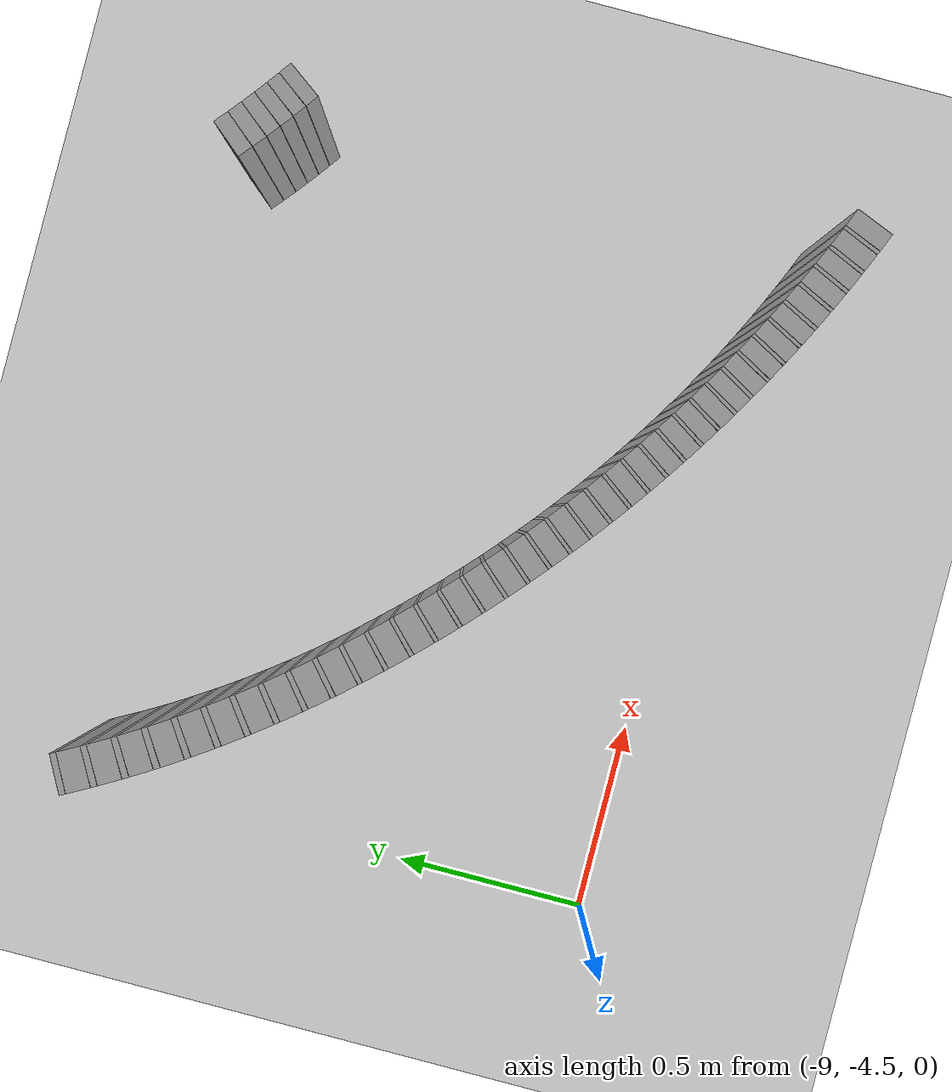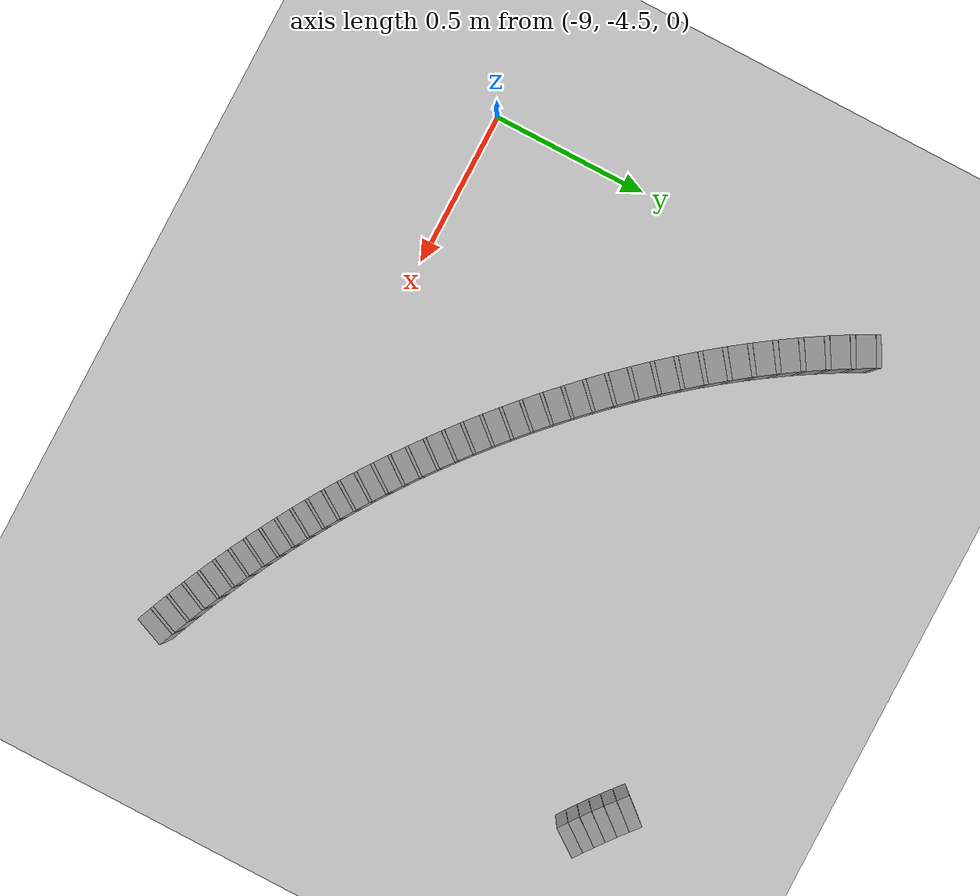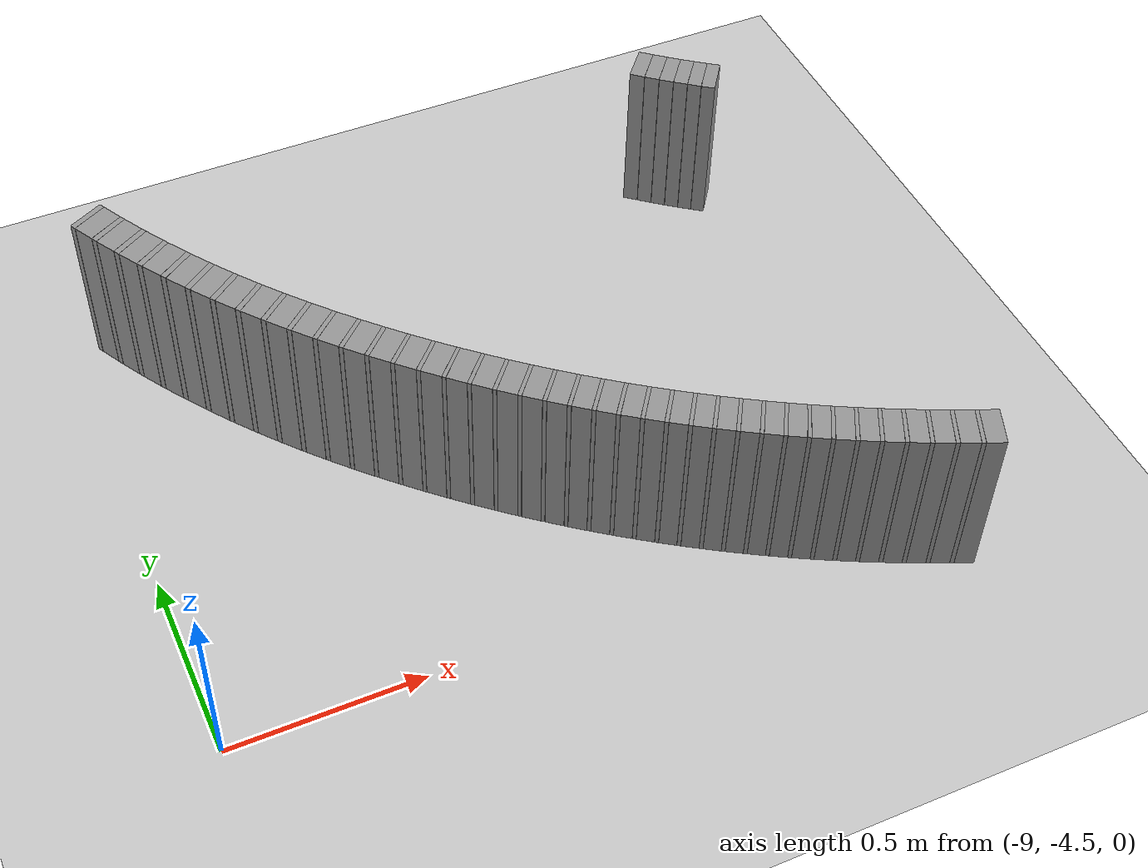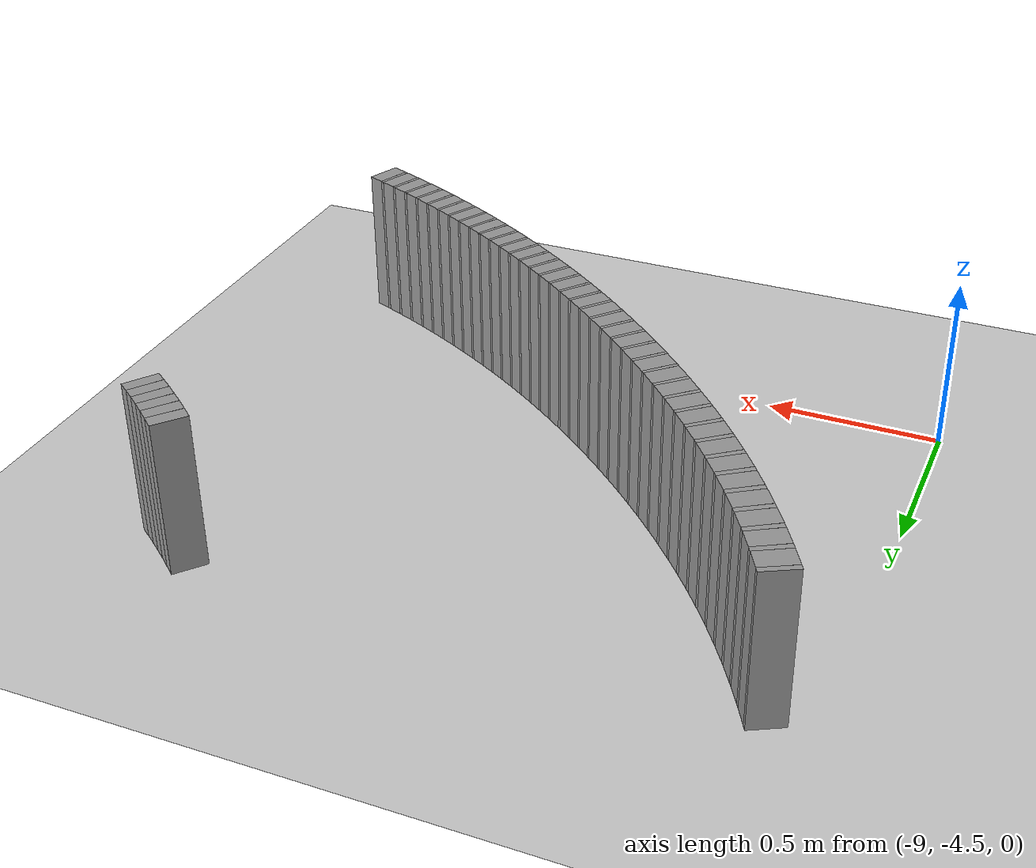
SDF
<sdf version="1.6">
 <world name="default">
  <include><uri>model://ground_plane</uri></include>
  <include><uri>model://sun</uri></include>
  <model name="wall_431_outward">
   <static>true</static>
   <link name="link">
    <collision name="collision">
     <geometry><box><size>0.04052010452437109 0.1 0.45</size></box></geometry>
    </collision>
    <visual name="visual">
     <geometry><box><size>0.04052010452437109 0.1 0.45</size></box></geometry>
     <material>
      <script><uri>file://media/materials/scripts/gazebo.material</uri><name>Gazebo/Gray</name></script>
     </material>
    </visual>
   </link>
   <pose>-7.3323751024577986 -3.1837910641316958 0.225 0 0 -0.7059049666267965</pose>
  </model>
  <model name="wall_432_outward">
   <static>true</static>
   <link name="link">
    <collision name="collision">
     <geometry><box><size>0.03955155566836275 0.1 0.45</size></box></geometry>
    </collision>
    <visual name="visual">
     <geometry><box><size>0.03955155566836275 0.1 0.45</size></box></geometry>
     <material>
      <script><uri>file://media/materials/scripts/gazebo.material</uri><name>Gazebo/Gray</name></script>
     </material>
    </visual>
   </link>
   <pose>-7.301701996041393 -3.209518950081698 0.225 0 0 -0.6897843278526138</pose>
  </model>
  <model name="wall_433_outward">
   <static>true</static>
   <link name="link">
    <collision name="collision">
     <geometry><box><size>0.03860037699249491 0.1 0.45</size></box></geometry>
    </collision>
    <visual name="visual">
     <geometry><box><size>0.03860037699249491 0.1 0.45</size></box></geometry>
     <material>
      <script><uri>file://media/materials/scripts/gazebo.material</uri><name>Gazebo/Gray</name></script>
     </material>
    </visual>
   </link>
   <pose>-7.2713632923436755 -3.234144037078578 0.225 0 0 -0.673654993288522</pose>
  </model>
  <model name="wall_434_outward">
   <static>true</static>
   <link name="link">
    <collision name="collision">
     <geometry><box><size>0.03769754247316741 0.1 0.45</size></box></geometry>
    </collision>
    <visual name="visual">
     <geometry><box><size>0.03769754247316741 0.1 0.45</size></box></geometry>
     <material>
      <script><uri>file://media/materials/scripts/gazebo.material</uri><name>Gazebo/Gray</name></script>
     </material>
    </visual>
   </link>
   <pose>-7.24136049302804 -3.25770418686065 0.225 0 0 -0.6575371143915064</pose>
  </model>
  <model name="wall_435_outward">
   <static>true</static>
   <link name="link">
    <collision name="collision">
     <geometry><box><size>0.03687503472727291 0.1 0.45</size></box></geometry>
    </collision>
    <visual name="visual">
     <geometry><box><size>0.03687503472727291 0.1 0.45</size></box></geometry>
     <material>
      <script><uri>file://media/materials/scripts/gazebo.material</uri><name>Gazebo/Gray</name></script>
     </material>
    </visual>
   </link>
   <pose>-7.211668559101143 -3.2802555942225475 0.225 0 0 -0.641408242066201</pose>
  </model>
  <model name="wall_436_outward">
   <static>true</static>
   <link name="link">
    <collision name="collision">
     <geometry><box><size>0.036166160249508715 0.1 0.45</size></box></geometry>
    </collision>
    <visual name="visual">
     <geometry><box><size>0.036166160249508715 0.1 0.45</size></box></geometry>
     <material>
      <script><uri>file://media/materials/scripts/gazebo.material</uri><name>Gazebo/Gray</name></script>
     </material>
    </visual>
   </link>
   <pose>-7.182234237277166 -3.3018724530080354 0.225 0 0 -0.6253329151521445</pose>
  </model>
  <model name="wall_519_inward">
   <static>true</static>
   <link name="link">
    <collision name="collision">
     <geometry><box><size>0.015527573171308316 0.1 0.45</size></box></geometry>
    </collision>
    <visual name="visual">
     <geometry><box><size>0.015527573171308316 0.1 0.45</size></box></geometry>
     <material>
      <script><uri>file://media/materials/scripts/gazebo.material</uri><name>Gazebo/Gray</name></script>
     </material>
    </visual>
   </link>
   <pose>-8.87474132541102 -3.1687883749340875 0.225 0 0 -1.0834946189756185</pose>
  </model>
  <model name="wall_520_inward">
   <static>true</static>
   <link name="link">
    <collision name="collision">
     <geometry><box><size>0.05905371527359526 0.1 0.45</size></box></geometry>
    </collision>
    <visual name="visual">
     <geometry><box><size>0.05905371527359526 0.1 0.45</size></box></geometry>
     <material>
      <script><uri>file://media/materials/scripts/gazebo.material</uri><name>Gazebo/Gray</name></script>
     </material>
    </visual>
   </link>
   <pose>-8.856943791144811 -3.201557286058264 0.225 0 0 -1.0705546135487822</pose>
  </model>
  <model name="wall_521_inward">
   <static>true</static>
   <link name="link">
    <collision name="collision">
     <geometry><box><size>0.015932615619912337 0.1 0.45</size></box></geometry>
    </collision>
    <visual name="visual">
     <geometry><box><size>0.015932615619912337 0.1 0.45</size></box></geometry>
     <material>
      <script><uri>file://media/materials/scripts/gazebo.material</uri><name>Gazebo/Gray</name></script>
     </material>
    </visual>
   </link>
   <pose>-8.838868184520102 -3.234404940968888 0.225 0 0 -1.0572770437433197</pose>
  </model>
  <model name="wall_522_inward">
   <static>true</static>
   <link name="link">
    <collision name="collision">
     <geometry><box><size>0.05885851260069995 0.1 0.45</size></box></geometry>
    </collision>
    <visual name="visual">
     <geometry><box><size>0.05885851260069995 0.1 0.45</size></box></geometry>
     <material>
      <script><uri>file://media/materials/scripts/gazebo.material</uri><name>Gazebo/Gray</name></script>
     </material>
    </visual>
   </link>
   <pose>-8.820158709936546 -3.2667830577418977 0.225 0 0 -1.0439994739377951</pose>
  </model>
  <model name="wall_523_inward">
   <static>true</static>
   <link name="link">
    <collision name="collision">
     <geometry><box><size>0.016111386493032658 0.1 0.45</size></box></geometry>
    </collision>
    <visual name="visual">
     <geometry><box><size>0.016111386493032658 0.1 0.45</size></box></geometry>
     <material>
      <script><uri>file://media/materials/scripts/gazebo.material</uri><name>Gazebo/Gray</name></script>
     </material>
    </visual>
   </link>
   <pose>-8.801219384048649 -3.299130865091641 0.225 0 0 -1.0305729151241145</pose>
  </model>
  <model name="wall_524_inward">
   <static>true</static>
   <link name="link">
    <collision name="collision">
     <geometry><box><size>0.058672957463671134 0.1 0.45</size></box></geometry>
    </collision>
    <visual name="visual">
     <geometry><box><size>0.058672957463671134 0.1 0.45</size></box></geometry>
     <material>
      <script><uri>file://media/materials/scripts/gazebo.material</uri><name>Gazebo/Gray</name></script>
     </material>
    </visual>
   </link>
   <pose>-8.781651132227243 -3.330993310753219 0.225 0 0 -1.0171463563103202</pose>
  </model>
  <model name="wall_525_inward">
   <static>true</static>
   <link name="link">
    <collision name="collision">
     <geometry><box><size>0.016062901756474787 0.1 0.45</size></box></geometry>
    </collision>
    <visual name="visual">
     <geometry><box><size>0.016062901756474787 0.1 0.45</size></box></geometry>
     <material>
      <script><uri>file://media/materials/scripts/gazebo.material</uri><name>Gazebo/Gray</name></script>
     </material>
    </visual>
   </link>
   <pose>-8.761912177317756 -3.3627217460048993 0.225 0 0 -1.0037602050748111</pose>
  </model>
  <model name="wall_526_inward">
   <static>true</static>
   <link name="link">
    <collision name="collision">
     <geometry><box><size>0.058490530153916094 0.1 0.45</size></box></geometry>
    </collision>
    <visual name="visual">
     <geometry><box><size>0.058490530153916094 0.1 0.45</size></box></geometry>
     <material>
      <script><uri>file://media/materials/scripts/gazebo.material</uri><name>Gazebo/Gray</name></script>
     </material>
    </visual>
   </link>
   <pose>-8.741560775094905 -3.3939520500753284 0.225 0 0 -0.9903740538394754</pose>
  </model>
  <model name="wall_527_inward">
   <static>true</static>
   <link name="link">
    <collision name="collision">
     <geometry><box><size>0.015798465694523492 0.1 0.45</size></box></geometry>
    </collision>
    <visual name="visual">
     <geometry><box><size>0.015798465694523492 0.1 0.45</size></box></geometry>
     <material>
      <script><uri>file://media/materials/scripts/gazebo.material</uri><name>Gazebo/Gray</name></script>
     </material>
    </visual>
   </link>
   <pose>-8.721104993250385 -3.42495583487928 0.225 0 0 -0.9772082854106177</pose>
  </model>
  <model name="wall_528_inward">
   <static>true</static>
   <link name="link">
    <collision name="collision">
     <geometry><box><size>0.058301013286723324 0.1 0.45</size></box></geometry>
    </collision>
    <visual name="visual">
     <geometry><box><size>0.058301013286723324 0.1 0.45</size></box></geometry>
     <material>
      <script><uri>file://media/materials/scripts/gazebo.material</uri><name>Gazebo/Gray</name></script>
     </material>
    </visual>
   </link>
   <pose>-8.700064918033632 -3.455451056110465 0.225 0 0 -0.9640425169815823</pose>
  </model>
  <model name="wall_529_inward">
   <static>true</static>
   <link name="link">
    <collision name="collision">
     <geometry><box><size>0.015368167212986523 0.1 0.45</size></box></geometry>
    </collision>
    <visual name="visual">
     <geometry><box><size>0.015368167212986523 0.1 0.45</size></box></geometry>
     <material>
      <script><uri>file://media/materials/scripts/gazebo.material</uri><name>Gazebo/Gray</name></script>
     </material>
    </visual>
   </link>
   <pose>-8.678981214266006 -3.4856541641366268 0.225 0 0 -0.9512353608617365</pose>
  </model>
  <model name="wall_530_inward">
   <static>true</static>
   <link name="link">
    <collision name="collision">
     <geometry><box><size>0.05808956293798848 0.1 0.45</size></box></geometry>
    </collision>
    <visual name="visual">
     <geometry><box><size>0.05808956293798848 0.1 0.45</size></box></geometry>
     <material>
      <script><uri>file://media/materials/scripts/gazebo.material</uri><name>Gazebo/Gray</name></script>
     </material>
    </visual>
   </link>
   <pose>-8.65735212749391 -3.515338428124732 0.225 0 0 -0.9384282047418999</pose>
  </model>
  <model name="wall_531_inward">
   <static>true</static>
   <link name="link">
    <collision name="collision">
     <geometry><box><size>0.014791827156988756 0.1 0.45</size></box></geometry>
    </collision>
    <visual name="visual">
     <geometry><box><size>0.014791827156988756 0.1 0.45</size></box></geometry>
     <material>
      <script><uri>file://media/materials/scripts/gazebo.material</uri><name>Gazebo/Gray</name></script>
     </material>
    </visual>
   </link>
   <pose>-8.63574040870314 -3.544678251333016 0.225 0 0 -0.9261013699345143</pose>
  </model>
  <model name="wall_532_inward">
   <static>true</static>
   <link name="link">
    <collision name="collision">
     <geometry><box><size>0.05784088667871015 0.1 0.45</size></box></geometry>
    </collision>
    <visual name="visual">
     <geometry><box><size>0.05784088667871015 0.1 0.45</size></box></geometry>
     <material>
      <script><uri>file://media/materials/scripts/gazebo.material</uri><name>Gazebo/Gray</name></script>
     </material>
    </visual>
   </link>
   <pose>-8.613632310305189 -3.573489312823057 0.225 0 0 -0.9137745351272955</pose>
  </model>
  <model name="wall_533_inward">
   <static>true</static>
   <link name="link">
    <collision name="collision">
     <geometry><box><size>0.014134130141639433 0.1 0.45</size></box></geometry>
    </collision>
    <visual name="visual">
     <geometry><box><size>0.014134130141639433 0.1 0.45</size></box></geometry>
     <material>
      <script><uri>file://media/materials/scripts/gazebo.material</uri><name>Gazebo/Gray</name></script>
     </material>
    </visual>
   </link>
   <pose>-8.59158691972566 -3.601933524192573 0.225 0 0 -0.9019958209851363</pose>
  </model>
  <model name="wall_534_inward">
   <static>true</static>
   <link name="link">
    <collision name="collision">
     <geometry><box><size>0.05753866824697744 0.1 0.45</size></box></geometry>
    </collision>
    <visual name="visual">
     <geometry><box><size>0.05753866824697744 0.1 0.45</size></box></geometry>
     <material>
      <script><uri>file://media/materials/scripts/gazebo.material</uri><name>Gazebo/Gray</name></script>
     </material>
    </visual>
   </link>
   <pose>-8.569102108021337 -3.6298378704966283 0.225 0 0 -0.8902171068428398</pose>
  </model>
  <model name="wall_535_inward">
   <static>true</static>
   <link name="link">
    <collision name="collision">
     <geometry><box><size>0.01342469108581439 0.1 0.45</size></box></geometry>
    </collision>
    <visual name="visual">
     <geometry><box><size>0.01342469108581439 0.1 0.45</size></box></geometry>
     <material>
      <script><uri>file://media/materials/scripts/gazebo.material</uri><name>Gazebo/Gray</name></script>
     </material>
    </visual>
   </link>
   <pose>-8.54671740035954 -3.6573669512215456 0.225 0 0 -0.8790296309027712</pose>
  </model>
  <model name="wall_536_inward">
   <static>true</static>
   <link name="link">
    <collision name="collision">
     <geometry><box><size>0.057168281652983224 0.1 0.45</size></box></geometry>
    </collision>
    <visual name="visual">
     <geometry><box><size>0.057168281652983224 0.1 0.45</size></box></geometry>
     <material>
      <script><uri>file://media/materials/scripts/gazebo.material</uri><name>Gazebo/Gray</name></script>
     </material>
    </visual>
   </link>
   <pose>-8.523956689752556 -3.684344126555272 0.225 0 0 -0.8678421549626656</pose>
  </model>
  <model name="wall_537_inward">
   <static>true</static>
   <link name="link">
    <collision name="collision">
     <geometry><box><size>0.012716767657401309 0.1 0.45</size></box></geometry>
    </collision>
    <visual name="visual">
     <geometry><box><size>0.012716767657401309 0.1 0.45</size></box></geometry>
     <material>
      <script><uri>file://media/materials/scripts/gazebo.material</uri><name>Gazebo/Gray</name></script>
     </material>
    </visual>
   </link>
   <pose>-8.501316066785815 -3.7109591938940962 0.225 0 0 -0.8572446502200202</pose>
  </model>
  <model name="wall_538_inward">
   <static>true</static>
   <link name="link">
    <collision name="collision">
     <geometry><box><size>0.05671556231235829 0.1 0.45</size></box></geometry>
    </collision>
    <visual name="visual">
     <geometry><box><size>0.05671556231235829 0.1 0.45</size></box></geometry>
     <material>
      <script><uri>file://media/materials/scripts/gazebo.material</uri><name>Gazebo/Gray</name></script>
     </material>
    </visual>
   </link>
   <pose>-8.478367373963094 -3.737008173895613 0.225 0 0 -0.8466471454775264</pose>
  </model>
  <model name="wall_539_inward">
   <static>true</static>
   <link name="link">
    <collision name="collision">
     <geometry><box><size>0.01204314602579462 0.1 0.45</size></box></geometry>
    </collision>
    <visual name="visual">
     <geometry><box><size>0.01204314602579462 0.1 0.45</size></box></geometry>
     <material>
      <script><uri>file://media/materials/scripts/gazebo.material</uri><name>Gazebo/Gray</name></script>
     </material>
    </visual>
   </link>
   <pose>-8.455546041354058 -3.762720224995034 0.225 0 0 -0.8366110219774976</pose>
  </model>
  <model name="wall_540_inward">
   <static>true</static>
   <link name="link">
    <collision name="collision">
     <geometry><box><size>0.056172662973467964 0.1 0.45</size></box></geometry>
    </collision>
    <visual name="visual">
     <geometry><box><size>0.056172662973467964 0.1 0.45</size></box></geometry>
     <material>
      <script><uri>file://media/materials/scripts/gazebo.material</uri><name>Gazebo/Gray</name></script>
     </material>
    </visual>
   </link>
   <pose>-8.432486031501352 -3.78785124288717 0.225 0 0 -0.8265748984774961</pose>
  </model>
  <model name="wall_541_inward">
   <static>true</static>
   <link name="link">
    <collision name="collision">
     <geometry><box><size>0.011436589758057803 0.1 0.45</size></box></geometry>
    </collision>
    <visual name="visual">
     <geometry><box><size>0.011436589758057803 0.1 0.45</size></box></geometry>
     <material>
      <script><uri>file://media/materials/scripts/gazebo.material</uri><name>Gazebo/Gray</name></script>
     </material>
    </visual>
   </link>
   <pose>-8.409546887953464 -3.8126813429435087 0.225 0 0 -0.8170442627303977</pose>
  </model>
  <model name="wall_542_inward">
   <static>true</static>
   <link name="link">
    <collision name="collision">
     <geometry><box><size>0.05553613325590796 0.1 0.45</size></box></geometry>
    </collision>
    <visual name="visual">
     <geometry><box><size>0.05553613325590796 0.1 0.45</size></box></geometry>
     <material>
      <script><uri>file://media/materials/scripts/gazebo.material</uri><name>Gazebo/Gray</name></script>
     </material>
    </visual>
   </link>
   <pose>-8.38643742004905 -3.8369150896049193 0.225 0 0 -0.8075136269832294</pose>
  </model>
  <model name="wall_543_inward">
   <static>true</static>
   <link name="link">
    <collision name="collision">
     <geometry><box><size>0.010909136859082109 0.1 0.45</size></box></geometry>
    </collision>
    <visual name="visual">
     <geometry><box><size>0.010909136859082109 0.1 0.45</size></box></geometry>
     <material>
      <script><uri>file://media/materials/scripts/gazebo.material</uri><name>Gazebo/Gray</name></script>
     </material>
    </visual>
   </link>
   <pose>-8.363435032758606 -3.8608863461667142 0.225 0 0 -0.798422554375294</pose>
  </model>
  <model name="wall_544_inward">
   <static>true</static>
   <link name="link">
    <collision name="collision">
     <geometry><box><size>0.05480763911300347 0.1 0.45</size></box></geometry>
    </collision>
    <visual name="visual">
     <geometry><box><size>0.05480763911300347 0.1 0.45</size></box></geometry>
     <material>
      <script><uri>file://media/materials/scripts/gazebo.material</uri><name>Gazebo/Gray</name></script>
     </material>
    </visual>
   </link>
   <pose>-8.340327571378154 -3.8842467086605588 0.225 0 0 -0.7893314817673353</pose>
  </model>
  <model name="wall_545_inward">
   <static>true</static>
   <link name="link">
    <collision name="collision">
     <geometry><box><size>0.010478091009702676 0.1 0.45</size></box></geometry>
    </collision>
    <visual name="visual">
     <geometry><box><size>0.010478091009702676 0.1 0.45</size></box></geometry>
     <material>
      <script><uri>file://media/materials/scripts/gazebo.material</uri><name>Gazebo/Gray</name></script>
     </material>
    </visual>
   </link>
   <pose>-8.31730421365678 -3.9073869483350943 0.225 0 0 -0.7805996282992631</pose>
  </model>
  <model name="wall_546_inward">
   <static>true</static>
   <link name="link">
    <collision name="collision">
     <geometry><box><size>0.053994751811532835 0.1 0.45</size></box></geometry>
    </collision>
    <visual name="visual">
     <geometry><box><size>0.053994751811532835 0.1 0.45</size></box></geometry>
     <material>
      <script><uri>file://media/materials/scripts/gazebo.material</uri><name>Gazebo/Gray</name></script>
     </material>
    </visual>
   </link>
   <pose>-8.294235347494222 -3.9299036864478536 0.225 0 0 -0.771867774831194</pose>
  </model>
  <model name="wall_547_inward">
   <static>true</static>
   <link name="link">
    <collision name="collision">
     <geometry><box><size>0.010162865961426891 0.1 0.45</size></box></geometry>
    </collision>
    <visual name="visual">
     <geometry><box><size>0.010162865961426891 0.1 0.45</size></box></geometry>
     <material>
      <script><uri>file://media/materials/scripts/gazebo.material</uri><name>Gazebo/Gray</name></script>
     </material>
    </visual>
   </link>
   <pose>-8.271217492909717 -3.9522468847444387 0.225 0 0 -0.76339861861978</pose>
  </model>
  <model name="wall_548_inward">
   <static>true</static>
   <link name="link">
    <collision name="collision">
     <geometry><box><size>0.05311057720830487 0.1 0.45</size></box></geometry>
    </collision>
    <visual name="visual">
     <geometry><box><size>0.05311057720830487 0.1 0.45</size></box></geometry>
     <material>
      <script><uri>file://media/materials/scripts/gazebo.material</uri><name>Gazebo/Gray</name></script>
     </material>
    </visual>
   </link>
   <pose>-8.24820546151065 -3.9739567646352567 0.225 0 0 -0.75492946240825</pose>
  </model>
  <model name="wall_549_inward">
   <static>true</static>
   <link name="link">
    <collision name="collision">
     <geometry><box><size>0.009927393788108252 0.1 0.45</size></box></geometry>
    </collision>
    <visual name="visual">
     <geometry><box><size>0.009927393788108252 0.1 0.45</size></box></geometry>
     <material>
      <script><uri>file://media/materials/scripts/gazebo.material</uri><name>Gazebo/Gray</name></script>
     </material>
    </visual>
   </link>
   <pose>-8.225221543032575 -3.995524725059819 0.225 0 0 -0.7466565398835986</pose>
  </model>
  <model name="wall_550_inward">
   <static>true</static>
   <link name="link">
    <collision name="collision">
     <geometry><box><size>0.0521709726398773 0.1 0.45</size></box></geometry>
    </collision>
    <visual name="visual">
     <geometry><box><size>0.0521709726398773 0.1 0.45</size></box></geometry>
     <material>
      <script><uri>file://media/materials/scripts/gazebo.material</uri><name>Gazebo/Gray</name></script>
     </material>
    </visual>
   </link>
   <pose>-8.20228665209276 -4.016453979563555 0.225 0 0 -0.7383836173590215</pose>
  </model>
  <model name="wall_551_inward">
   <static>true</static>
   <link name="link">
    <collision name="collision">
     <geometry><box><size>0.009783733990381334 0.1 0.45</size></box></geometry>
    </collision>
    <visual name="visual">
     <geometry><box><size>0.009783733990381334 0.1 0.45</size></box></geometry>
     <material>
      <script><uri>file://media/materials/scripts/gazebo.material</uri><name>Gazebo/Gray</name></script>
     </material>
    </visual>
   </link>
   <pose>-8.179350392723869 -4.0372750252145515 0.225 0 0 -0.7302304153704104</pose>
  </model>
  <model name="wall_552_inward">
   <static>true</static>
   <link name="link">
    <collision name="collision">
     <geometry><box><size>0.05119620867547653 0.1 0.45</size></box></geometry>
    </collision>
    <visual name="visual">
     <geometry><box><size>0.05119620867547653 0.1 0.45</size></box></geometry>
     <material>
      <script><uri>file://media/materials/scripts/gazebo.material</uri><name>Gazebo/Gray</name></script>
     </material>
    </visual>
   </link>
   <pose>-8.15649615170296 -4.057457039364712 0.225 0 0 -0.7220772133817558</pose>
  </model>
  <model name="wall_553_inward">
   <static>true</static>
   <link name="link">
    <collision name="collision">
     <geometry><box><size>0.009703242310453572 0.1 0.45</size></box></geometry>
    </collision>
    <visual name="visual">
     <geometry><box><size>0.009703242310453572 0.1 0.45</size></box></geometry>
     <material>
      <script><uri>file://media/materials/scripts/gazebo.material</uri><name>Gazebo/Gray</name></script>
     </material>
    </visual>
   </link>
   <pose>-8.133619819353612 -4.077553085755008 0.225 0 0 -0.7139910900042187</pose>
  </model>
  <model name="wall_554_inward">
   <static>true</static>
   <link name="link">
    <collision name="collision">
     <geometry><box><size>0.05020818066523038 0.1 0.45</size></box></geometry>
    </collision>
    <visual name="visual">
     <geometry><box><size>0.05020818066523038 0.1 0.45</size></box></geometry>
     <material>
      <script><uri>file://media/materials/scripts/gazebo.material</uri><name>Gazebo/Gray</name></script>
     </material>
    </visual>
   </link>
   <pose>-8.110848350628823 -4.09701579109762 0.225 0 0 -0.7059049666268077</pose>
  </model>
  <model name="wall_555_inward">
   <static>true</static>
   <link name="link">
    <collision name="collision">
     <geometry><box><size>0.009672278531076151 0.1 0.45</size></box></geometry>
    </collision>
    <visual name="visual">
     <geometry><box><size>0.009672278531076151 0.1 0.45</size></box></geometry>
     <material>
      <script><uri>file://media/materials/scripts/gazebo.material</uri><name>Gazebo/Gray</name></script>
     </material>
    </visual>
   </link>
   <pose>-8.088037925734984 -4.116408933621267 0.225 0 0 -0.6978446472397493</pose>
  </model>
  <model name="wall_556_inward">
   <static>true</static>
   <link name="link">
    <collision name="collision">
     <geometry><box><size>0.04922675731243773 0.1 0.45</size></box></geometry>
    </collision>
    <visual name="visual">
     <geometry><box><size>0.04922675731243773 0.1 0.45</size></box></geometry>
     <material>
      <script><uri>file://media/materials/scripts/gazebo.material</uri><name>Gazebo/Gray</name></script>
     </material>
    </visual>
   </link>
   <pose>-8.065345987169877 -4.13517971667768 0.225 0 0 -0.689784327852615</pose>
  </model>
  <model name="wall_557_inward">
   <static>true</static>
   <link name="link">
    <collision name="collision">
     <geometry><box><size>0.009677495835443306 0.1 0.45</size></box></geometry>
    </collision>
    <visual name="visual">
     <geometry><box><size>0.009677495835443306 0.1 0.45</size></box></geometry>
     <material>
      <script><uri>file://media/materials/scripts/gazebo.material</uri><name>Gazebo/Gray</name></script>
     </material>
    </visual>
   </link>
   <pose>-8.042602397776536 -4.153891989529549 0.225 0 0 -0.6817196605705311</pose>
  </model>
  <model name="wall_558_inward">
   <static>true</static>
   <link name="link">
    <collision name="collision">
     <geometry><box><size>0.04827475061960221 0.1 0.45</size></box></geometry>
    </collision>
    <visual name="visual">
     <geometry><box><size>0.04827475061960221 0.1 0.45</size></box></geometry>
     <material>
      <script><uri>file://media/materials/scripts/gazebo.material</uri><name>Gazebo/Gray</name></script>
     </material>
    </visual>
   </link>
   <pose>-8.019980670268652 -4.17199904797935 0.225 0 0 -0.6736549932885155</pose>
  </model>
  <model name="wall_559_inward">
   <static>true</static>
   <link name="link">
    <collision name="collision">
     <geometry><box><size>0.00967062265856863 0.1 0.45</size></box></geometry>
    </collision>
    <visual name="visual">
     <geometry><box><size>0.00967062265856863 0.1 0.45</size></box></geometry>
     <material>
      <script><uri>file://media/materials/scripts/gazebo.material</uri><name>Gazebo/Gray</name></script>
     </material>
    </visual>
   </link>
   <pose>-7.9973129748437835 -4.190043010272441 0.225 0 0 -0.6655960538400544</pose>
  </model>
  <model name="wall_560_inward">
   <static>true</static>
   <link name="link">
    <collision name="collision">
     <geometry><box><size>0.047371777419647786 0.1 0.45</size></box></geometry>
    </collision>
    <visual name="visual">
     <geometry><box><size>0.047371777419647786 0.1 0.45</size></box></geometry>
     <material>
      <script><uri>file://media/materials/scripts/gazebo.material</uri><name>Gazebo/Gray</name></script>
     </material>
    </visual>
   </link>
   <pose>-7.974762388452409 -4.207505039561184 0.225 0 0 -0.6575371143914878</pose>
  </model>
  <model name="wall_561_inward">
   <static>true</static>
   <link name="link">
    <collision name="collision">
     <geometry><box><size>0.009677218501182307 0.1 0.45</size></box></geometry>
    </collision>
    <visual name="visual">
     <geometry><box><size>0.009677218501182307 0.1 0.45</size></box></geometry>
     <material>
      <script><uri>file://media/materials/scripts/gazebo.material</uri><name>Gazebo/Gray</name></script>
     </material>
    </visual>
   </link>
   <pose>-7.952161528569981 -4.224907357310363 0.225 0 0 -0.6494726782289334</pose>
  </model>
  <model name="wall_562_inward">
   <static>true</static>
   <link name="link">
    <collision name="collision">
     <geometry><box><size>0.0465365032518974 0.1 0.45</size></box></geometry>
    </collision>
    <visual name="visual">
     <geometry><box><size>0.0465365032518974 0.1 0.45</size></box></geometry>
     <material>
      <script><uri>file://media/materials/scripts/gazebo.material</uri><name>Gazebo/Gray</name></script>
     </material>
    </visual>
   </link>
   <pose>-7.929664267615769 -4.24175554878266 0.225 0 0 -0.6414082420661992</pose>
  </model>
  <model name="wall_563_inward">
   <static>true</static>
   <link name="link">
    <collision name="collision">
     <geometry><box><size>0.009645092295673003 0.1 0.45</size></box></geometry>
    </collision>
    <visual name="visual">
     <geometry><box><size>0.009645092295673003 0.1 0.45</size></box></geometry>
     <material>
      <script><uri>file://media/materials/scripts/gazebo.material</uri><name>Gazebo/Gray</name></script>
     </material>
    </visual>
   </link>
   <pose>-7.907133337275823 -4.258531807252931 0.225 0 0 -0.6333705786091562</pose>
  </model>
  <model name="wall_564_inward">
   <static>true</static>
   <link name="link">
    <collision name="collision">
     <geometry><box><size>0.04578543378192534 0.1 0.45</size></box></geometry>
    </collision>
    <visual name="visual">
     <geometry><box><size>0.04578543378192534 0.1 0.45</size></box></geometry>
     <material>
      <script><uri>file://media/materials/scripts/gazebo.material</uri><name>Gazebo/Gray</name></script>
     </material>
    </visual>
   </link>
   <pose>-7.884685497003916 -4.274786749274155 0.225 0 0 -0.6253329151521507</pose>
  </model>
  <model name="wall_565_inward">
   <static>true</static>
   <link name="link">
    <collision name="collision">
     <geometry><box><size>0.009592836677284628 0.1 0.45</size></box></geometry>
    </collision>
    <visual name="visual">
     <geometry><box><size>0.009592836677284628 0.1 0.45</size></box></geometry>
     <material>
      <script><uri>file://media/materials/scripts/gazebo.material</uri><name>Gazebo/Gray</name></script>
     </material>
    </visual>
   </link>
   <pose>-7.862213703959231 -4.290963884684867 0.225 0 0 -0.6173387994428462</pose>
  </model>
  <model name="wall_566_inward">
   <static>true</static>
   <link name="link">
    <collision name="collision">
     <geometry><box><size>0.04513338956304569 0.1 0.45</size></box></geometry>
    </collision>
    <visual name="visual">
     <geometry><box><size>0.04513338956304569 0.1 0.45</size></box></geometry>
     <material>
      <script><uri>file://media/materials/scripts/gazebo.material</uri><name>Gazebo/Gray</name></script>
     </material>
    </visual>
   </link>
   <pose>-7.8397973853455625 -4.3066559751238565 0.225 0 0 -0.6093446837335381</pose>
  </model>
  <model name="wall_567_inward">
   <static>true</static>
   <link name="link">
    <collision name="collision">
     <geometry><box><size>0.009524309365729525 0.1 0.45</size></box></geometry>
    </collision>
    <visual name="visual">
     <geometry><box><size>0.009524309365729525 0.1 0.45</size></box></geometry>
     <material>
      <script><uri>file://media/materials/scripts/gazebo.material</uri><name>Gazebo/Gray</name></script>
     </material>
    </visual>
   </link>
   <pose>-7.817365584072255 -4.322266021080665 0.225 0 0 -0.6014076759289823</pose>
  </model>
  <model name="wall_568_inward">
   <static>true</static>
   <link name="link">
    <collision name="collision">
     <geometry><box><size>0.044594273058568945 0.1 0.45</size></box></geometry>
    </collision>
    <visual name="visual">
     <geometry><box><size>0.044594273058568945 0.1 0.45</size></box></geometry>
     <material>
      <script><uri>file://media/materials/scripts/gazebo.material</uri><name>Gazebo/Gray</name></script>
     </material>
    </visual>
   </link>
   <pose>-7.79495456548597 -4.337429951896486 0.225 0 0 -0.593470668124346</pose>
  </model>
  <model name="wall_569_inward">
   <static>true</static>
   <link name="link">
    <collision name="collision">
     <geometry><box><size>0.009430491665447478 0.1 0.45</size></box></geometry>
    </collision>
    <visual name="visual">
     <geometry><box><size>0.009430491665447478 0.1 0.45</size></box></geometry>
     <material>
      <script><uri>file://media/materials/scripts/gazebo.material</uri><name>Gazebo/Gray</name></script>
     </material>
    </visual>
   </link>
   <pose>-7.772540570139547 -4.3525055984885626 0.225 0 0 -0.5856118441751301</pose>
  </model>
  <model name="wall_570_inward">
   <static>true</static>
   <link name="link">
    <collision name="collision">
     <geometry><box><size>0.044177483601526776 0.1 0.45</size></box></geometry>
    </collision>
    <visual name="visual">
     <geometry><box><size>0.044177483601526776 0.1 0.45</size></box></geometry>
     <material>
      <script><uri>file://media/materials/scripts/gazebo.material</uri><name>Gazebo/Gray</name></script>
     </material>
    </visual>
   </link>
   <pose>-7.750107445647308 -4.367175371695647 0.225 0 0 -0.5777530202258684</pose>
  </model>
  <model name="wall_571_inward">
   <static>true</static>
   <link name="link">
    <collision name="collision">
     <geometry><box><size>0.009339218014074358 0.1 0.45</size></box></geometry>
    </collision>
    <visual name="visual">
     <geometry><box><size>0.009339218014074358 0.1 0.45</size></box></geometry>
     <material>
      <script><uri>file://media/materials/scripts/gazebo.material</uri><name>Gazebo/Gray</name></script>
     </material>
    </visual>
   </link>
   <pose>-7.727672461449258 -4.381758738053856 0.225 0 0 -0.5699702599789958</pose>
  </model>
  <model name="wall_572_inward">
   <static>true</static>
   <link name="link">
    <collision name="collision">
     <geometry><box><size>0.0438927312867207 0.1 0.45</size></box></geometry>
    </collision>
    <visual name="visual">
     <geometry><box><size>0.0438927312867207 0.1 0.45</size></box></geometry>
     <material>
      <script><uri>file://media/materials/scripts/gazebo.material</uri><name>Gazebo/Gray</name></script>
     </material>
    </visual>
   </link>
   <pose>-7.705172413152619 -4.395976745152633 0.225 0 0 -0.5621874997320943</pose>
  </model>
  <model name="wall_573_inward">
   <static>true</static>
   <link name="link">
    <collision name="collision">
     <geometry><box><size>0.00924536706939521 0.1 0.45</size></box></geometry>
    </collision>
    <visual name="visual">
     <geometry><box><size>0.00924536706939521 0.1 0.45</size></box></geometry>
     <material>
      <script><uri>file://media/materials/scripts/gazebo.material</uri><name>Gazebo/Gray</name></script>
     </material>
    </visual>
   </link>
   <pose>-7.682673708450051 -4.410108858894664 0.225 0 0 -0.5544829509507636</pose>
  </model>
  <model name="wall_574_inward">
   <static>true</static>
   <link name="link">
    <collision name="collision">
     <geometry><box><size>0.04374554916850316 0.1 0.45</size></box></geometry>
    </collision>
    <visual name="visual">
     <geometry><box><size>0.04374554916850316 0.1 0.45</size></box></geometry>
     <material>
      <script><uri>file://media/materials/scripts/gazebo.material</uri><name>Gazebo/Gray</name></script>
     </material>
    </visual>
   </link>
   <pose>-7.660059817555826 -4.423915206624443 0.225 0 0 -0.546778402169382</pose>
  </model>
  <model name="wall_575_inward">
   <static>true</static>
   <link name="link">
    <collision name="collision">
     <geometry><box><size>0.009208489620727405 0.1 0.45</size></box></geometry>
    </collision>
    <visual name="visual">
     <geometry><box><size>0.009208489620727405 0.1 0.45</size></box></geometry>
     <material>
      <script><uri>file://media/materials/scripts/gazebo.material</uri><name>Gazebo/Gray</name></script>
     </material>
    </visual>
   </link>
   <pose>-7.6374247875895565 -4.437651364896046 0.225 0 0 -0.5391045855036959</pose>
  </model>
  <model name="wall_576_inward">
   <static>true</static>
   <link name="link">
    <collision name="collision">
     <geometry><box><size>0.04373774054411442 0.1 0.45</size></box></geometry>
    </collision>
    <visual name="visual">
     <geometry><box><size>0.04373774054411442 0.1 0.45</size></box></geometry>
     <material>
      <script><uri>file://media/materials/scripts/gazebo.material</uri><name>Gazebo/Gray</name></script>
     </material>
    </visual>
   </link>
   <pose>-7.614620789991745 -4.451097464196523 0.225 0 0 -0.5314307688380747</pose>
  </model>
  <model name="wall_577_inward">
   <static>true</static>
   <link name="link">
    <collision name="collision">
     <geometry><box><size>0.009182858902434877 0.1 0.45</size></box></geometry>
    </collision>
    <visual name="visual">
     <geometry><box><size>0.009182858902434877 0.1 0.45</size></box></geometry>
     <material>
      <script><uri>file://media/materials/scripts/gazebo.material</uri><name>Gazebo/Gray</name></script>
     </material>
    </visual>
   </link>
   <pose>-7.591792128871217 -4.464476321133319 0.225 0 0 -0.5237783117315031</pose>
  </model>
  <model name="wall_578_inward">
   <static>true</static>
   <link name="link">
    <collision name="collision">
     <geometry><box><size>0.04386734658273495 0.1 0.45</size></box></geometry>
    </collision>
    <visual name="visual">
     <geometry><box><size>0.04386734658273495 0.1 0.45</size></box></geometry>
     <material>
      <script><uri>file://media/materials/scripts/gazebo.material</uri><name>Gazebo/Gray</name></script>
     </material>
    </visual>
   </link>
   <pose>-7.5687397051296 -4.477597332442038 0.225 0 0 -0.5161258546249038</pose>
  </model>
  <model name="wall_579_inward">
   <static>true</static>
   <link name="link">
    <collision name="collision">
     <geometry><box><size>0.009215548479324499 0.1 0.45</size></box></geometry>
    </collision>
    <visual name="visual">
     <geometry><box><size>0.009215548479324499 0.1 0.45</size></box></geometry>
     <material>
      <script><uri>file://media/materials/scripts/gazebo.material</uri><name>Gazebo/Gray</name></script>
     </material>
    </visual>
   </link>
   <pose>-7.545638263666159 -4.4906650743575 0.225 0 0 -0.5084461554036926</pose>
  </model>
  <model name="wall_580_inward">
   <static>true</static>
   <link name="link">
    <collision name="collision">
     <geometry><box><size>0.044128167989111636 0.1 0.45</size></box></geometry>
    </collision>
    <visual name="visual">
     <geometry><box><size>0.044128167989111636 0.1 0.45</size></box></geometry>
     <material>
      <script><uri>file://media/materials/scripts/gazebo.material</uri><name>Gazebo/Gray</name></script>
     </material>
    </visual>
   </link>
   <pose>-7.522258421595605 -4.50350115671926 0.225 0 0 -0.5007664561826043</pose>
  </model>
  <model name="wall_581_inward">
   <static>true</static>
   <link name="link">
    <collision name="collision">
     <geometry><box><size>0.009294167045113768 0.1 0.45</size></box></geometry>
    </collision>
    <visual name="visual">
     <geometry><box><size>0.009294167045113768 0.1 0.45</size></box></geometry>
     <material>
      <script><uri>file://media/materials/scripts/gazebo.material</uri><name>Gazebo/Gray</name></script>
     </material>
    </visual>
   </link>
   <pose>-7.498809831343296 -4.516293495618391 0.225 0 0 -0.49302123954148036</pose>
  </model>
  <model name="wall_582_inward">
   <static>true</static>
   <link name="link">
    <collision name="collision">
     <geometry><box><size>0.04451111389870103 0.1 0.45</size></box></geometry>
    </collision>
    <visual name="visual">
     <geometry><box><size>0.04451111389870103 0.1 0.45</size></box></geometry>
     <material>
      <script><uri>file://media/materials/scripts/gazebo.material</uri><name>Gazebo/Gray</name></script>
     </material>
    </visual>
   </link>
   <pose>-7.475030114099733 -4.528874072234892 0.225 0 0 -0.4852760229002019</pose>
  </model>
  <model name="wall_583_inward">
   <static>true</static>
   <link name="link">
    <collision name="collision">
     <geometry><box><size>0.009401135610251908 0.1 0.45</size></box></geometry>
    </collision>
    <visual name="visual">
     <geometry><box><size>0.009401135610251908 0.1 0.45</size></box></geometry>
     <material>
      <script><uri>file://media/materials/scripts/gazebo.material</uri><name>Gazebo/Gray</name></script>
     </material>
    </visual>
   </link>
   <pose>-7.451169125761216 -4.541415183685725 0.225 0 0 -0.4774416630834564</pose>
  </model>
  <model name="wall_584_inward">
   <static>true</static>
   <link name="link">
    <collision name="collision">
     <geometry><box><size>0.04500020495020957 0.1 0.45</size></box></geometry>
    </collision>
    <visual name="visual">
     <geometry><box><size>0.04500020495020957 0.1 0.45</size></box></geometry>
     <material>
      <script><uri>file://media/materials/scripts/gazebo.material</uri><name>Gazebo/Gray</name></script>
     </material>
    </visual>
   </link>
   <pose>-7.4269298285700565 -4.553757243641573 0.225 0 0 -0.4696073032665924</pose>
  </model>
  <model name="wall_585_inward">
   <static>true</static>
   <link name="link">
    <collision name="collision">
     <geometry><box><size>0.009537845525916782 0.1 0.45</size></box></geometry>
    </collision>
    <visual name="visual">
     <geometry><box><size>0.009537845525916782 0.1 0.45</size></box></geometry>
     <material>
      <script><uri>file://media/materials/scripts/gazebo.material</uri><name>Gazebo/Gray</name></script>
     </material>
    </visual>
   </link>
   <pose>-7.402595763811379 -4.566063593669223 0.225 0 0 -0.46165901497270845</pose>
  </model>
  <model name="wall_586_inward">
   <static>true</static>
   <link name="link">
    <collision name="collision">
     <geometry><box><size>0.04557811520001358 0.1 0.45</size></box></geometry>
    </collision>
    <visual name="visual">
     <geometry><box><size>0.04557811520001358 0.1 0.45</size></box></geometry>
     <material>
      <script><uri>file://media/materials/scripts/gazebo.material</uri><name>Gazebo/Gray</name></script>
     </material>
    </visual>
   </link>
   <pose>-7.377842659649988 -4.5781763658644685 0.225 0 0 -0.4537107266788135</pose>
  </model>
  <model name="wall_587_inward">
   <static>true</static>
   <link name="link">
    <collision name="collision">
     <geometry><box><size>0.00966854616511731 0.1 0.45</size></box></geometry>
    </collision>
    <visual name="visual">
     <geometry><box><size>0.00966854616511731 0.1 0.45</size></box></geometry>
     <material>
      <script><uri>file://media/materials/scripts/gazebo.material</uri><name>Gazebo/Gray</name></script>
     </material>
    </visual>
   </link>
   <pose>-7.352997136797461 -4.590248699534193 0.225 0 0 -0.4456535176976974</pose>
  </model>
  <model name="wall_588_inward">
   <static>true</static>
   <link name="link">
    <collision name="collision">
     <geometry><box><size>0.04622308368283994 0.1 0.45</size></box></geometry>
    </collision>
    <visual name="visual">
     <geometry><box><size>0.04622308368283994 0.1 0.45</size></box></geometry>
     <material>
      <script><uri>file://media/materials/scripts/gazebo.material</uri><name>Gazebo/Gray</name></script>
     </material>
    </visual>
   </link>
   <pose>-7.327701223512526 -4.602126329335233 0.225 0 0 -0.43759630871656385</pose>
  </model>
  <model name="wall_589_inward">
   <static>true</static>
   <link name="link">
    <collision name="collision">
     <geometry><box><size>0.009814721786544743 0.1 0.45</size></box></geometry>
    </collision>
    <visual name="visual">
     <geometry><box><size>0.009814721786544743 0.1 0.45</size></box></geometry>
     <material>
      <script><uri>file://media/materials/scripts/gazebo.material</uri><name>Gazebo/Gray</name></script>
     </material>
    </visual>
   </link>
   <pose>-7.302305601500055 -4.61396329287844 0.225 0 0 -0.4294172827034867</pose>
  </model>
  <model name="wall_590_inward">
   <static>true</static>
   <link name="link">
    <collision name="collision">
     <geometry><box><size>0.04691244977977082 0.1 0.45</size></box></geometry>
    </collision>
    <visual name="visual">
     <geometry><box><size>0.04691244977977082 0.1 0.45</size></box></geometry>
     <material>
      <script><uri>file://media/materials/scripts/gazebo.material</uri><name>Gazebo/Gray</name></script>
     </material>
    </visual>
   </link>
   <pose>-7.27643802741884 -4.62559746278201 0.225 0 0 -0.42123825669028625</pose>
  </model>
  <model name="wall_591_inward">
   <static>true</static>
   <link name="link">
    <collision name="collision">
     <geometry><box><size>0.009919404701029087 0.1 0.45</size></box></geometry>
    </collision>
    <visual name="visual">
     <geometry><box><size>0.009919404701029087 0.1 0.45</size></box></geometry>
     <material>
      <script><uri>file://media/materials/scripts/gazebo.material</uri><name>Gazebo/Gray</name></script>
     </material>
    </visual>
   </link>
   <pose>-7.2504895169975985 -4.6371789902517495 0.225 0 0 -0.4129719919658552</pose>
  </model>
  <model name="wall_592_inward">
   <static>true</static>
   <link name="link">
    <collision name="collision">
     <geometry><box><size>0.04762060279900173 0.1 0.45</size></box></geometry>
    </collision>
    <visual name="visual">
     <geometry><box><size>0.04762060279900173 0.1 0.45</size></box></geometry>
     <material>
      <script><uri>file://media/materials/scripts/gazebo.material</uri><name>Gazebo/Gray</name></script>
     </material>
    </visual>
   </link>
   <pose>-7.224059901429962 -4.648544748801363 0.225 0 0 -0.404705727241471</pose>
  </model>
  <model name="wall_593_inward">
   <static>true</static>
   <link name="link">
    <collision name="collision">
     <geometry><box><size>0.010000819814778733 0.1 0.45</size></box></geometry>
    </collision>
    <visual name="visual">
     <geometry><box><size>0.010000819814778733 0.1 0.45</size></box></geometry>
     <material>
      <script><uri>file://media/materials/scripts/gazebo.material</uri><name>Gazebo/Gray</name></script>
     </material>
    </visual>
   </link>
   <pose>-7.197560318937759 -4.659850541303664 0.225 0 0 -0.3963716142518152</pose>
  </model>
  <model name="wall_594_inward">
   <static>true</static>
   <link name="link">
    <collision name="collision">
     <geometry><box><size>0.048323668388209125 0.1 0.45</size></box></geometry>
    </collision>
    <visual name="visual">
     <geometry><box><size>0.048323668388209125 0.1 0.45</size></box></geometry>
     <material>
      <script><uri>file://media/materials/scripts/gazebo.material</uri><name>Gazebo/Gray</name></script>
     </material>
    </visual>
   </link>
   <pose>-7.17058211745864 -4.670923243514603 0.225 0 0 -0.38803750126212755</pose>
  </model>
 </world>
</sdf>
